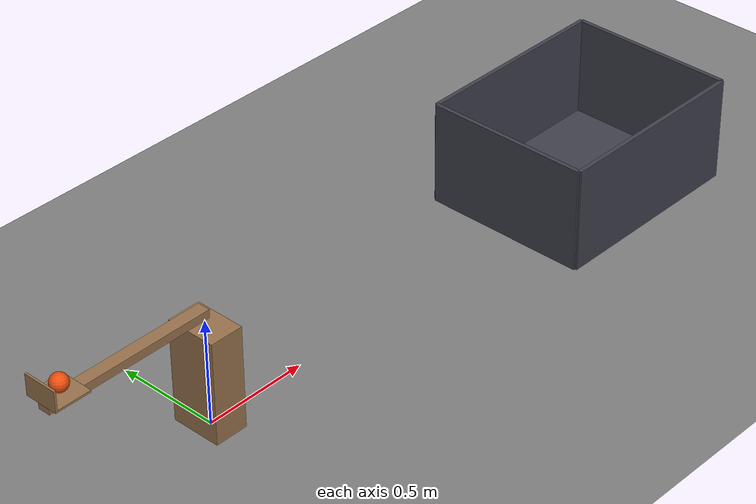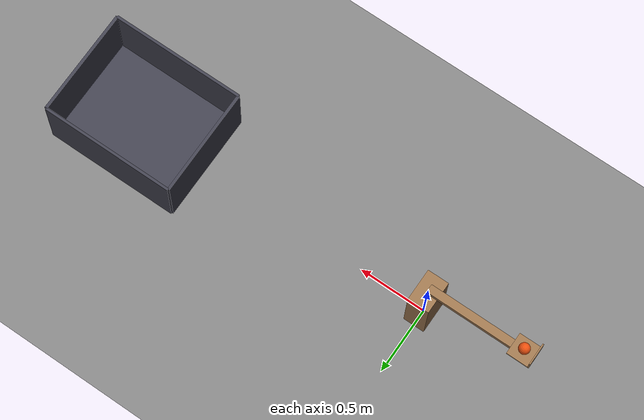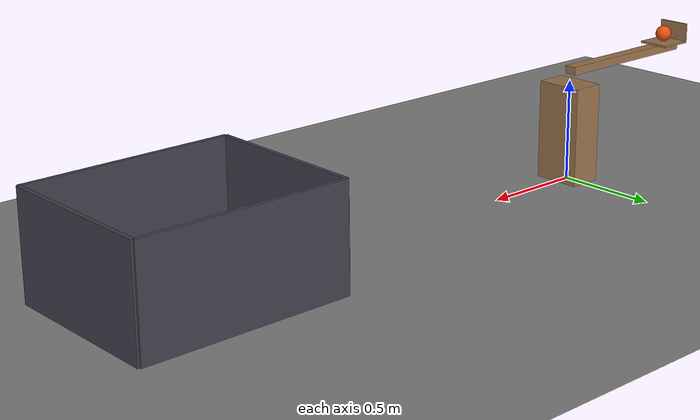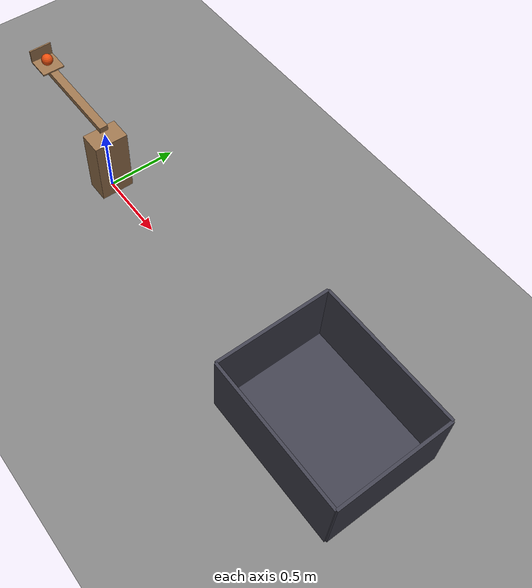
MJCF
<mujoco model="spring_catapult_into_a_bucket">
  <compiler angle="radian"/>
  <option timestep="0.002"/>
  <worldbody>
    <geom name="floor" type="plane" size="8 8 0.1" friction="0.8 0.005 0.002"/>
    <geom name="catapult_stand" type="box" pos="0 0 0.245" size="0.08 0.12 0.245" friction="0.6 0.005 0.0001" solref="0.01 1" rgba="0.6 0.45 0.3 1"/>
    <body name="catapult" pos="0 0 0.55">
      <joint name="catapult_hinge" type="hinge" pos="0 0 0" axis="0 1 0" limited="true" range="0 0.785398" stiffness="3.6" springref="1.39626" damping="0.01" armature="0.01"/>
      <geom name="catapult_arm" type="box" pos="-0.4 0 0" size="0.4 0.03 0.02" mass="0.2" friction="0.6 0.005 0.0001" solref="0.01 1" rgba="0.6 0.45 0.3 1"/>
      <geom name="catapult_scoop_base" type="box" pos="-0.72 0 0.025" size="0.08 0.08 0.005" mass="0.02" friction="0.6 0.005 0.0001" solref="0.01 1" rgba="0.6 0.45 0.3 1"/>
      <geom name="catapult_scoop_back" type="box" pos="-0.805 0 0.07" size="0.005 0.08 0.05" mass="0.01" friction="0.6 0.005 0.0001" solref="0.01 1" rgba="0.6 0.45 0.3 1"/>
    </body>
    <body name="ball" pos="-0.72 0 0.62">
      <freejoint/>
      <geom name="ball" type="sphere" pos="0 0 0" size="0.04" mass="0.05" condim="6" friction="0.8 0.01 0.004" solref="0.01 1" rgba="0.9 0.3 0.05 1"/>
    </body>
    <body name="bucket">
      <geom name="bucket_base" type="box" pos="2.28 0 0.01" size="0.5 0.4 0.01" friction="0.8 0.01 0.004" solref="0.01 1" rgba="0.25 0.25 0.3 1"/>
      <geom name="bucket_near_wall" type="box" pos="1.78 0 0.25" size="0.01 0.4 0.25" friction="0.8 0.01 0.004" solref="0.01 1" rgba="0.25 0.25 0.3 1"/>
      <geom name="bucket_far_wall" type="box" pos="2.78 0 0.25" size="0.01 0.4 0.25" friction="0.8 0.01 0.004" solref="0.01 1" rgba="0.25 0.25 0.3 1"/>
      <geom name="bucket_left_wall" type="box" pos="2.28 0.4 0.25" size="0.5 0.01 0.25" friction="0.8 0.01 0.004" solref="0.01 1" rgba="0.25 0.25 0.3 1"/>
      <geom name="bucket_right_wall" type="box" pos="2.28 -0.4 0.25" size="0.5 0.01 0.25" friction="0.8 0.01 0.004" solref="0.01 1" rgba="0.25 0.25 0.3 1"/>
    </body>
  </worldbody>
  <keyframe>
    <key name="start" qpos="0 -0.72 0 0.62 1 0 0 0" qvel="0 0 0 0 0 0 0"/>
  </keyframe>
</mujoco>
